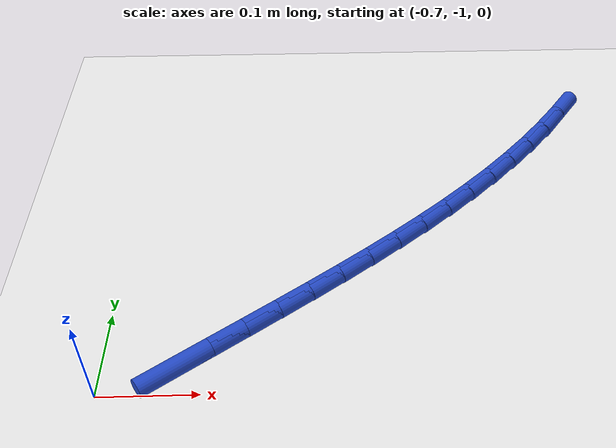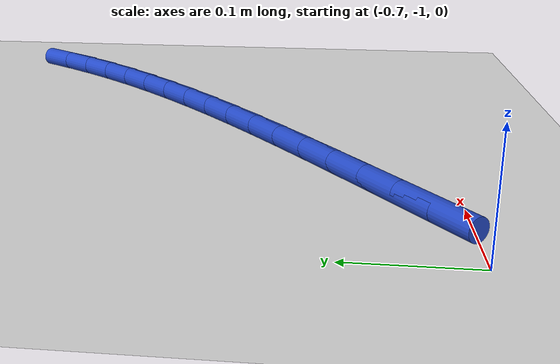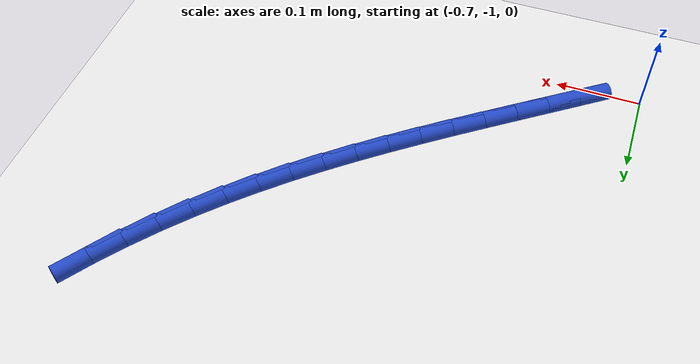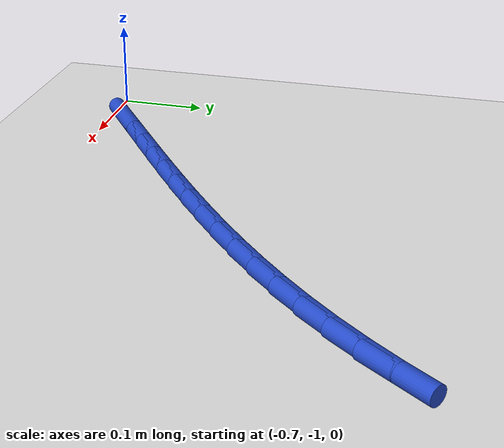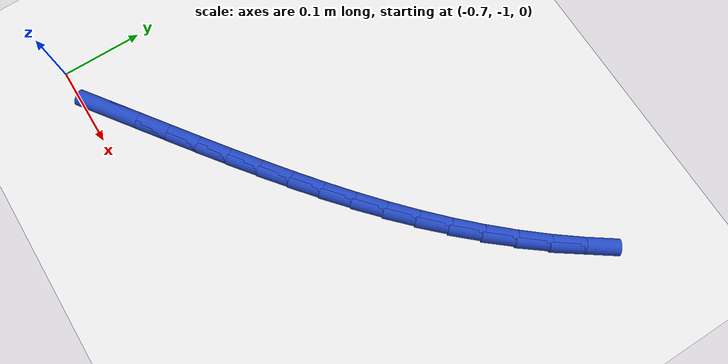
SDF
<sdf version="1.6">
 <world name="default">
  <model name="ground_plane">
   <static>1</static>
   <link name="link">
    <collision name="collision">
     <geometry><plane><normal>0 0 1</normal><size>100 100</size></plane></geometry>
     <surface><friction><ode><mu>100</mu><mu2>50</mu2></ode></friction></surface>
    </collision>
    <visual name="visual">
     <cast_shadows>0</cast_shadows>
     <geometry><plane><normal>0 0 1</normal><size>100 100</size></plane></geometry>
     <material>
      <script><uri>file://media/materials/scripts/gazebo.material</uri><name>Gazebo/WhiteGlow</name></script>
     </material>
    </visual>
   </link>
  </model>
  <model name="line">
   <link name="link_149">
    <pose>-0.6272683977172488 -0.9753173831833529 0.01 0 1.57 0.6304672377999355</pose>
    <collision name="collision">
     <geometry><cylinder><radius>0.01</radius><length>0.08</length></cylinder></geometry>
    </collision>
    <visual name="visual">
     <material>
      <script><name>Gazebo/Blue</name><uri>file://media/materials/scripts/gazebo.material</uri></script>
     </material>
     <geometry><cylinder><radius>0.01</radius><length>0.08</length></cylinder></geometry>
    </visual>
   </link>
   <link name="link_150">
    <pose>-0.5948527905992093 -0.9516594812411043 0.01 0 1.57 0.629546995089236</pose>
    <collision name="collision">
     <geometry><cylinder><radius>0.01</radius><length>0.08</length></cylinder></geometry>
    </collision>
    <visual name="visual">
     <material>
      <script><name>Gazebo/Blue</name><uri>file://media/materials/scripts/gazebo.material</uri></script>
     </material>
     <geometry><cylinder><radius>0.01</radius><length>0.08</length></cylinder></geometry>
    </visual>
   </link>
   <link name="link_151">
    <pose>-0.5626176571128673 -0.9281787288101249 0.01 0 1.57 0.6319016079170782</pose>
    <collision name="collision">
     <geometry><cylinder><radius>0.01</radius><length>0.08</length></cylinder></geometry>
    </collision>
    <visual name="visual">
     <material>
      <script><name>Gazebo/Blue</name><uri>file://media/materials/scripts/gazebo.material</uri></script>
     </material>
     <geometry><cylinder><radius>0.01</radius><length>0.08</length></cylinder></geometry>
    </visual>
   </link>
   <link name="link_152">
    <pose>-0.5306344347025205 -0.9047660090910028 0.01 0 1.57 0.6375905122295531</pose>
    <collision name="collision">
     <geometry><cylinder><radius>0.01</radius><length>0.08</length></cylinder></geometry>
    </collision>
    <visual name="visual">
     <material>
      <script><name>Gazebo/Blue</name><uri>file://media/materials/scripts/gazebo.material</uri></script>
     </material>
     <geometry><cylinder><radius>0.01</radius><length>0.08</length></cylinder></geometry>
    </visual>
   </link>
   <link name="link_153">
    <pose>-0.49897456081246677 -0.8813122052843257 0.01 0 1.57 0.6466702792757559</pose>
    <collision name="collision">
     <geometry><cylinder><radius>0.01</radius><length>0.08</length></cylinder></geometry>
    </collision>
    <visual name="visual">
     <material>
      <script><name>Gazebo/Blue</name><uri>file://media/materials/scripts/gazebo.material</uri></script>
     </material>
     <geometry><cylinder><radius>0.01</radius><length>0.08</length></cylinder></geometry>
    </visual>
   </link>
   <link name="link_154">
    <pose>-0.46770947288700304 -0.8577082005906815 0.01 0 1.57 0.6591924526992373</pose>
    <collision name="collision">
     <geometry><cylinder><radius>0.01</radius><length>0.08</length></cylinder></geometry>
    </collision>
    <visual name="visual">
     <material>
      <script><name>Gazebo/Blue</name><uri>file://media/materials/scripts/gazebo.material</uri></script>
     </material>
     <geometry><cylinder><radius>0.01</radius><length>0.08</length></cylinder></geometry>
    </visual>
   </link>
   <link name="link_155">
    <pose>-0.4369106083704284 -0.8338448782106589 0.01 0 1.57 0.6752000658956124</pose>
    <collision name="collision">
     <geometry><cylinder><radius>0.01</radius><length>0.08</length></cylinder></geometry>
    </collision>
    <visual name="visual">
     <material>
      <script><name>Gazebo/Blue</name><uri>file://media/materials/scripts/gazebo.material</uri></script>
     </material>
     <geometry><cylinder><radius>0.01</radius><length>0.08</length></cylinder></geometry>
    </visual>
   </link>
   <link name="link_156">
    <pose>-0.40664940470703986 -0.8096131213448454 0.01 0 1.57 0.6947227585948392</pose>
    <collision name="collision">
     <geometry><cylinder><radius>0.01</radius><length>0.08</length></cylinder></geometry>
    </collision>
    <visual name="visual">
     <material>
      <script><name>Gazebo/Blue</name><uri>file://media/materials/scripts/gazebo.material</uri></script>
     </material>
     <geometry><cylinder><radius>0.01</radius><length>0.08</length></cylinder></geometry>
    </visual>
   </link>
   <link name="link_157">
    <pose>-0.37699729934113535 -0.7849038131938291 0.01 0 1.57 0.7177704832588353</pose>
    <collision name="collision">
     <geometry><cylinder><radius>0.01</radius><length>0.08</length></cylinder></geometry>
    </collision>
    <visual name="visual">
     <material>
      <script><name>Gazebo/Blue</name><uri>file://media/materials/scripts/gazebo.material</uri></script>
     </material>
     <geometry><cylinder><radius>0.01</radius><length>0.08</length></cylinder></geometry>
    </visual>
   </link>
   <link name="link_158">
    <pose>-0.34802572971701234 -0.7596078369581979 0.01 0 1.57 0.7443259131549897</pose>
    <collision name="collision">
     <geometry><cylinder><radius>0.01</radius><length>0.08</length></cylinder></geometry>
    </collision>
    <visual name="visual">
     <material>
      <script><name>Gazebo/Blue</name><uri>file://media/materials/scripts/gazebo.material</uri></script>
     </material>
     <geometry><cylinder><radius>0.01</radius><length>0.08</length></cylinder></geometry>
    </visual>
   </link>
   <link name="link_159">
    <pose>-0.31980613327896823 -0.7336160758385395 0.01 0 1.57 0.7743358449510526</pose>
    <collision name="collision">
     <geometry><cylinder><radius>0.01</radius><length>0.08</length></cylinder></geometry>
    </collision>
    <visual name="visual">
     <material>
      <script><name>Gazebo/Blue</name><uri>file://media/materials/scripts/gazebo.material</uri></script>
     </material>
     <geometry><cylinder><radius>0.01</radius><length>0.08</length></cylinder></geometry>
    </visual>
   </link>
   <link name="link_160">
    <pose>-0.2924099474713018 -0.7068194130354426 0.01 0 1.57 0.8077021290505197</pose>
    <collision name="collision">
     <geometry><cylinder><radius>0.01</radius><length>0.08</length></cylinder></geometry>
    </collision>
    <visual name="visual">
     <material>
      <script><name>Gazebo/Blue</name><uri>file://media/materials/scripts/gazebo.material</uri></script>
     </material>
     <geometry><cylinder><radius>0.01</radius><length>0.08</length></cylinder></geometry>
    </visual>
   </link>
   <link name="link_161">
    <pose>-0.2659086097383102 -0.679108731749495 0.01 0 1.57 0.8442729414627527</pose>
    <collision name="collision">
     <geometry><cylinder><radius>0.01</radius><length>0.08</length></cylinder></geometry>
    </collision>
    <visual name="visual">
     <material>
      <script><name>Gazebo/Blue</name><uri>file://media/materials/scripts/gazebo.material</uri></script>
     </material>
     <geometry><cylinder><radius>0.01</radius><length>0.08</length></cylinder></geometry>
    </visual>
   </link>
   <link name="link_162">
    <pose>-0.24037355752429126 -0.6503749151812845 0.01 0 1.57 0.8835978941306039</pose>
    <collision name="collision">
     <geometry><cylinder><radius>0.01</radius><length>0.08</length></cylinder></geometry>
    </collision>
    <visual name="visual">
     <material>
      <script><name>Gazebo/Blue</name><uri>file://media/materials/scripts/gazebo.material</uri></script>
     </material>
     <geometry><cylinder><radius>0.01</radius><length>0.08</length></cylinder></geometry>
    </visual>
   </link>
   <link name="link_163">
    <pose>-0.21587395305470303 -0.6205205412442824 0.01 0 1.57 0.9233919904451962</pose>
    <collision name="collision">
     <geometry><cylinder><radius>0.01</radius><length>0.08</length></cylinder></geometry>
    </collision>
    <visual name="visual">
     <material>
      <script><name>Gazebo/Blue</name><uri>file://media/materials/scripts/gazebo.material</uri></script>
     </material>
     <geometry><cylinder><radius>0.01</radius><length>0.08</length></cylinder></geometry>
    </visual>
   </link>
   <link name="link_164">
    <pose>-0.19245863063584429 -0.5895526741431036 0.01 0 1.57 0.9626033460285472</pose>
    <collision name="collision">
     <geometry><cylinder><radius>0.01</radius><length>0.08</length></cylinder></geometry>
    </collision>
    <visual name="visual">
     <material>
      <script><name>Gazebo/Blue</name><uri>file://media/materials/scripts/gazebo.material</uri></script>
     </material>
     <geometry><cylinder><radius>0.01</radius><length>0.08</length></cylinder></geometry>
    </visual>
   </link>
  </model>
 </world>
</sdf>
